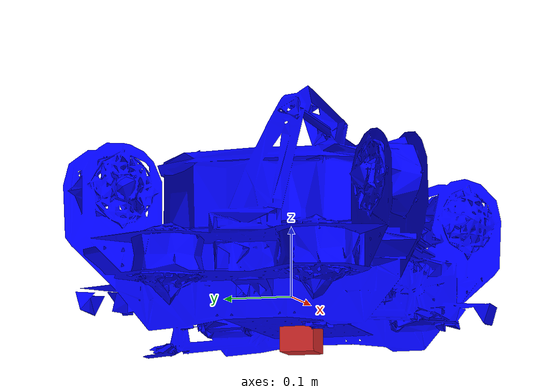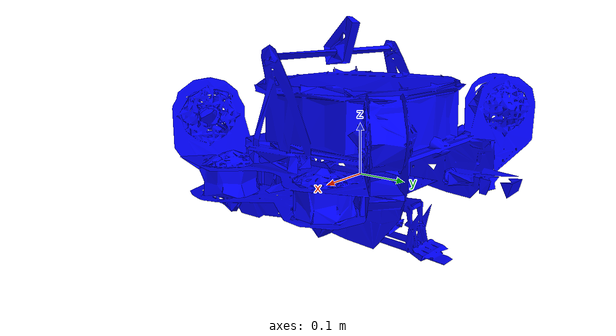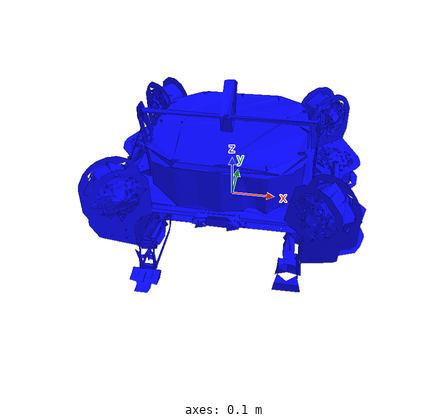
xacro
<?xml version="1.0" encoding="UTF-8"?>
 <robot name="rov" xmlns:xacro="http://www.ros.org/wiki/xacro">

    <!-- soontm https://github.com/clydemcqueen/bluerov2_ignition/ -->

      <xacro:arg name="params_path" default=""/>
      <!-- Need argument to get from launch file -->
      <xacro:property name="params_path" value="$(arg params_path)"/>
      <!-- Need seperate property for xacro inorder processing -->
      <xacro:property name="params" value="${load_yaml(params_path)}"/>
      <!-- Read in the yaml dict as mp (short for model parameters) -->

      <xacro:property name="rov_description" value="${params['rov_description']}"/>
      <xacro:property name="motor_properties" value="${rov_description['motor']}"/>

      <xacro:property name="width" value="${rov_description['width']}"/>
      <xacro:property name="length" value="${rov_description['length']}"/>
      <xacro:property name="height" value="${rov_description['height']}"/>

      <xacro:property name="motor_radius" value="${motor_properties['dimension']['radius']}"/>
      <xacro:property name="motor_height" value="${motor_properties['dimension']['height']}"/>

        <link name="base_link">
            <!-- no basis-->
            <inertial>
                <mass value="136.382"/>
                <inertia ixx="1e-3" ixy="0" ixz="0" iyy="1e-3" iyz="0" izz="1e-3" />
            </inertial>

            <visual>
                <origin rpy="0 0 0" xyz="0.0 0.0 0"/>
                <geometry>
                    <mesh filename="file://$(find rov_description)/meshes/rov.stl"/>
                </geometry>
                <material name="blue" >
                    <color rgba="0 0 1 1" />
                </material>
            </visual>

            <collision>
                <geometry>
                <!-- Rough dimensions of rov-->
                    <box size="${width} ${height} ${length}" />
                </geometry>
                <!-- no basis-->
            </collision>

        </link>

        <xacro:property name="camera_link" value="0.05" /> <!-- Size of square 'camera' box -->
        <xacro:property name="height3" value="0.05" /> <!-- Size of square 'camera' box -->
        <xacro:property name="axel_offset" value="0.05" /> <!-- Size of square 'camera' box -->

        <joint name="camera_joint" type="fixed">
          <axis xyz="0 1 0" />
          <origin xyz="${camera_link} 0 ${height3 - axel_offset*2}" rpy="0 0 0"/>
          <parent link="base_link"/>
          <child link="camera_link"/>
        </joint>

      <!-- Camera -->
      <link name="camera_link">
        <collision>
          <origin xyz="0 0 0" rpy="0 0 0"/>
          <geometry>
        <box size="${camera_link} ${camera_link} ${camera_link}"/>
          </geometry>
        </collision>

        <visual>
          <origin xyz="0 0 0" rpy="0 0 0"/>
          <geometry>
        <box size="${camera_link} ${camera_link} ${camera_link}"/>
          </geometry>
          <material name="red"/>
        </visual>

        <inertial>
          <mass value="1e-5" />
          <origin xyz="0 0 0" rpy="0 0 0"/>
          <inertia ixx="1e-6" ixy="0" ixz="0" iyy="1e-6" iyz="0" izz="1e-6" />
        </inertial>
      </link>

      <!-- From BlueROV2 example -->
      <!-- Hydrodynamics plugin -->
          <!-- Added mass: -->
          <!-- First order stability derivative: -->
          <!-- Second order stability derivative: -->

            <!-- small vals-->

    <!-- TODO: FOR LOOPS MAYBE?-->
          <!-- Port settings -->

          <!-- Transform from the Ignition Gazebo body frame (x-forward, y-left, z-up)
              to the ArduPilot body frame (x-forward, y-right, z-down) -->

          <!-- Transform from the Ignition Gazebo world frame (ENU)
              to the ArduPilot world frame (NED) -->
            <!-- Thrusters -->

</robot>
